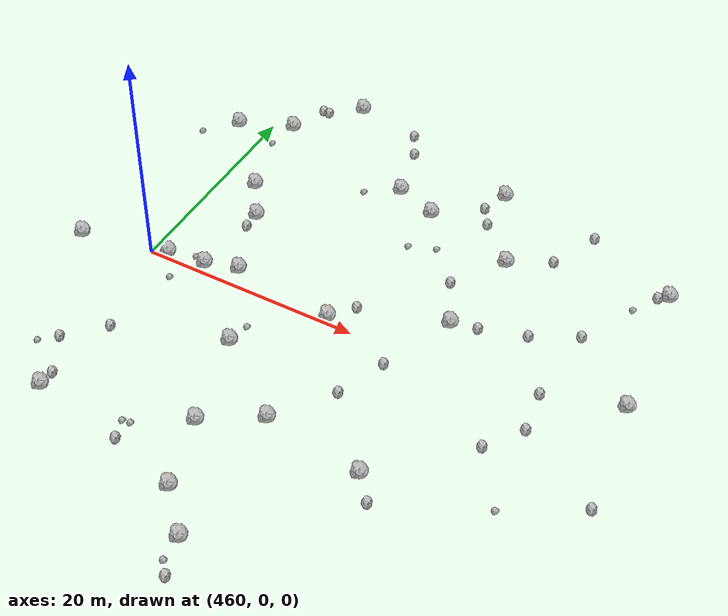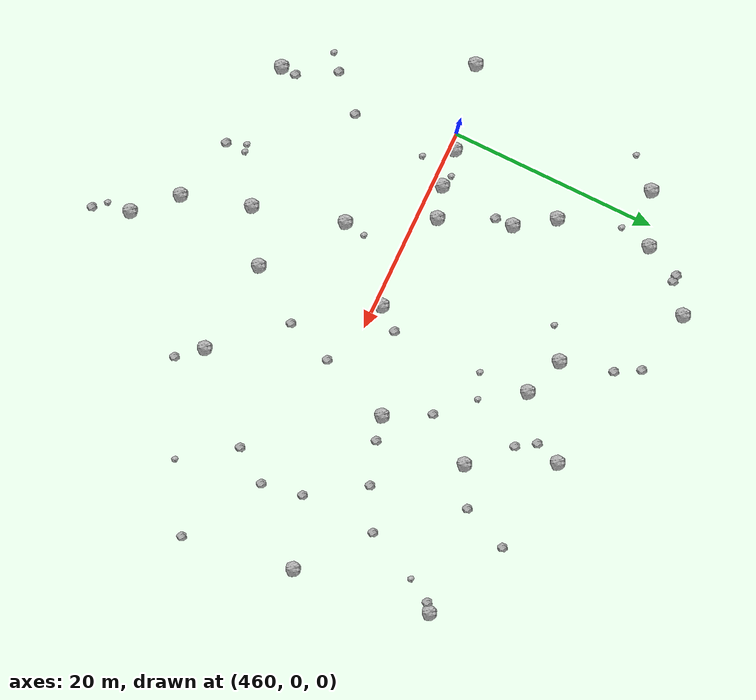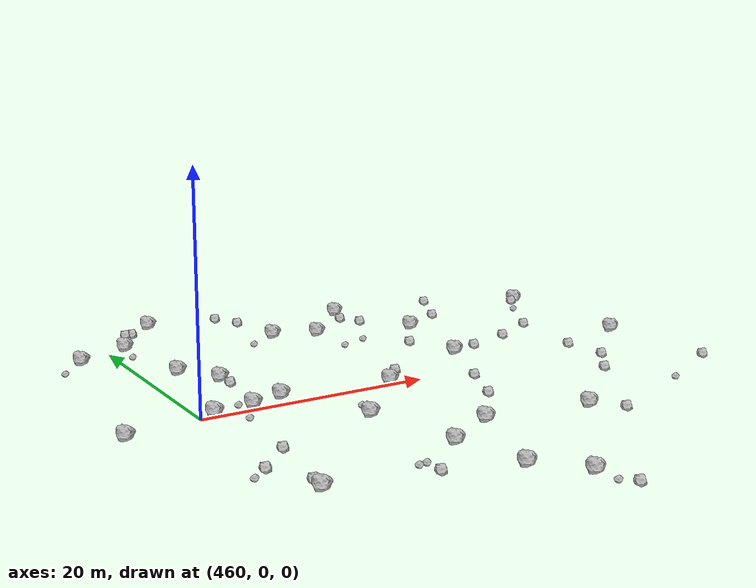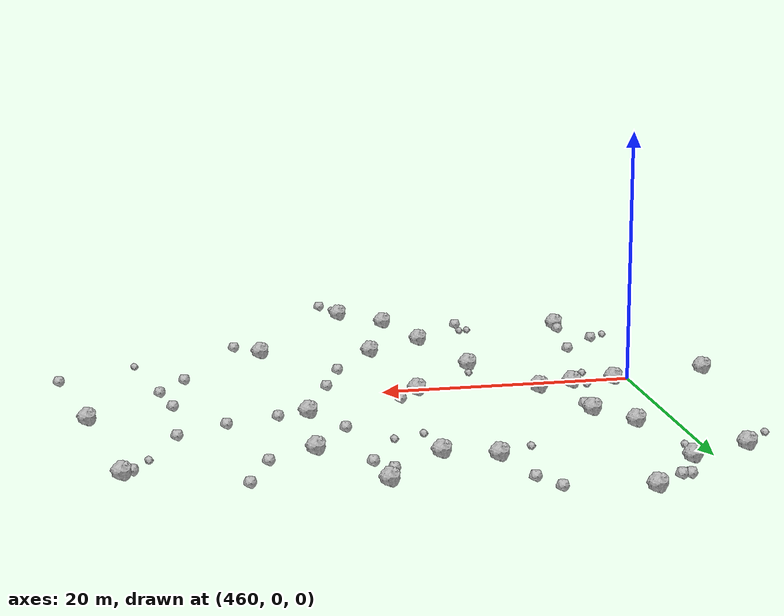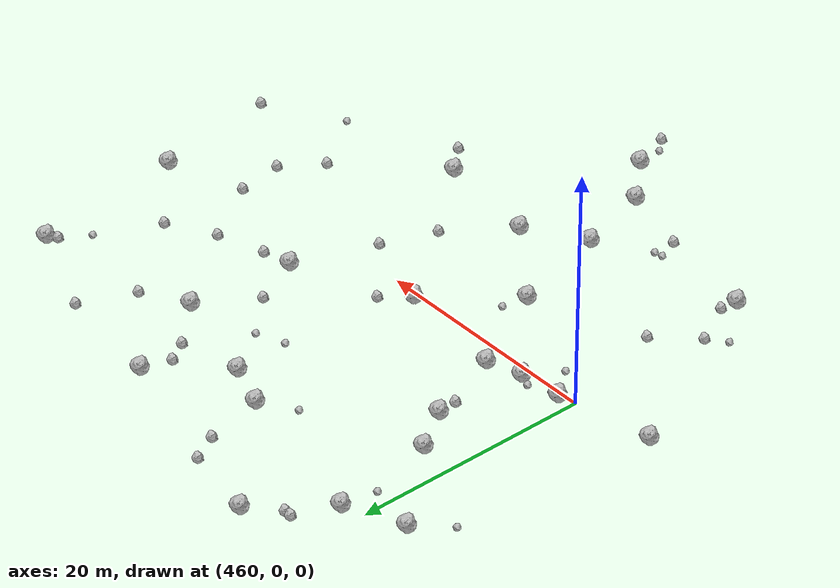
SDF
<sdf version="1.6">
 <world name="default">
  <include><uri>model://sun</uri></include>
  <model name="rock1_12_3">
   <include><uri>model://rock1</uri><pose>478.9979666574049 -11.321955841227894 0.5 0 0 0</pose></include>
  </model>
  <model name="rock1_12_4">
   <include><uri>model://rock1</uri><pose>453.43185582969943 -1.1146230439060645 0.5 0 0 0</pose></include>
  </model>
  <model name="rock1_12_5">
   <include><uri>model://rock1</uri><pose>488.0646466434342 -12.581796171926406 0.5 0 0 0</pose></include>
  </model>
  <model name="rock1_12_6">
   <include><uri>model://rock1</uri><pose>471.8839684683597 -5.788768649592676 0.5 0 0 0</pose></include>
  </model>
  <model name="rock1_12_7">
   <include><uri>model://rock1</uri><pose>465.49385698080954 8.403208958265942 0.5 0 0 0</pose></include>
  </model>
  <model name="rock1_12_8">
   <include><uri>model://rock1</uri><pose>475.0511181758279 17.737032083558 0.5 0 0 0</pose></include>
  </model>
  <model name="rock1_12_9">
   <include><uri>model://rock1</uri><pose>474.2610069267966 -14.296044044997501 0.5 0 0 0</pose></include>
  </model>
  <model name="rock1_12_10">
   <include><uri>model://rock1</uri><pose>466.2734669664699 26.28355561217613 0.5 0 0 0</pose></include>
  </model>
  <model name="rock1_12_11">
   <include><uri>model://rock1</uri><pose>477.4364613899486 0.6109753626851031 0.5 0 0 0</pose></include>
  </model>
  <model name="rock1_12_12">
   <include><uri>model://rock1</uri><pose>463.15539710802244 11.874513165677548 0.5 0 0 0</pose></include>
  </model>
  <model name="rock1_12_13">
   <include><uri>model://rock1</uri><pose>478.8876127807842 16.302103549103514 0.5 0 0 0</pose></include>
  </model>
  <model name="rock1_12_14">
   <include><uri>model://rock1</uri><pose>461.82449692430055 20.6991288338509 0.5 0 0 0</pose></include>
  </model>
  <model name="rock1_12_15">
   <include><uri>model://rock1</uri><pose>467.88305459633835 1.7839058208097782 0.5 0 0 0</pose></include>
  </model>
  <model name="rock1_12_16">
   <include><uri>model://rock1</uri><pose>464.9671408394477 0.8990096378290815 0.5 0 0 0</pose></include>
  </model>
  <model name="rock1_12_17">
   <include><uri>model://rock1</uri><pose>486.68624769932137 4.989639565514459 0.5 0 0 0</pose></include>
  </model>
  <model name="rock1_12_18">
   <include><uri>model://rock1</uri><pose>461.3884391600293 -17.329431269185648 0.5 0 0 0</pose></include>
  </model>
  <model name="rock1_12_19">
   <include><uri>model://rock1</uri><pose>479.52980673115354 -24.29888190498705 0.5 0 0 0</pose></include>
  </model>
  <model name="rock1_12_20">
   <include><uri>model://rock1</uri><pose>483.64812353643777 21.623138563469915 0.5 0 0 0</pose></include>
  </model>
  <model name="rock1_12_21">
   <include><uri>model://rock1</uri><pose>476.15834916299127 -20.724738317171184 0.5 0 0 0</pose></include>
  </model>
  <model name="rock1_12_22">
   <include><uri>model://rock1</uri><pose>487.48990807806524 13.855440470583588 0.5 0 0 0</pose></include>
  </model>
  <model name="rock1_12_23">
   <include><uri>model://rock1</uri><pose>501.36576430724807 16.82425750042414 0.5 0 0 0</pose></include>
  </model>
  <model name="rock1_12_24">
   <include><uri>model://rock1</uri><pose>461.428586962855 0.5224267040594626 0.5 0 0 0</pose></include>
  </model>
  <model name="rock1_12_25">
   <include><uri>model://rock1</uri><pose>503.1052875918725 3.645157968670688 0.5 0 0 0</pose></include>
  </model>
  <model name="rock1_12_26">
   <include><uri>model://rock1</uri><pose>457.06007690111466 18.665494868852036 0.5 0 0 0</pose></include>
  </model>
  <model name="rock2_12_0">
   <include><uri>model://rock2</uri><pose>483.95962775328866 17.41644945815721 0.3 0 0 0</pose></include>
  </model>
  <model name="rock2_12_1">
   <include><uri>model://rock2</uri><pose>504.7926168260862 -7.015774057708185 0.3 0 0 0</pose></include>
  </model>
  <model name="rock2_12_2">
   <include><uri>model://rock2</uri><pose>473.73874244079866 22.764127102554014 0.3 0 0 0</pose></include>
  </model>
  <model name="rock2_12_3">
   <include><uri>model://rock2</uri><pose>492.9571455244656 20.399760591087265 0.3 0 0 0</pose></include>
  </model>
  <model name="rock2_12_4">
   <include><uri>model://rock2</uri><pose>472.487454586982 25.05266212670535 0.3 0 0 0</pose></include>
  </model>
  <model name="rock2_12_5">
   <include><uri>model://rock2</uri><pose>500.56018065586665 16.249587667022226 0.3 0 0 0</pose></include>
  </model>
  <model name="rock2_12_6">
   <include><uri>model://rock2</uri><pose>461.4523716397918 -15.846483331426661 0.3 0 0 0</pose></include>
  </model>
  <model name="rock2_12_7">
   <include><uri>model://rock2</uri><pose>479.086630843042 2.705387569076578 0.3 0 0 0</pose></include>
  </model>
  <model name="rock2_12_8">
   <include><uri>model://rock2</uri><pose>484.519920730858 9.250704758282573 0.3 0 0 0</pose></include>
  </model>
  <model name="rock2_12_9">
   <include><uri>model://rock2</uri><pose>489.0124584801028 5.528368187918964 0.3 0 0 0</pose></include>
  </model>
  <model name="rock2_12_10">
   <include><uri>model://rock2</uri><pose>491.0928259273965 15.90241147977747 0.3 0 0 0</pose></include>
  </model>
  <model name="rock2_12_11">
   <include><uri>model://rock2</uri><pose>489.9859108768402 -14.774149468811919 0.3 0 0 0</pose></include>
  </model>
  <model name="rock2_12_12">
   <include><uri>model://rock2</uri><pose>484.16739207208684 -1.8089442728239078 0.3 0 0 0</pose></include>
  </model>
  <model name="rock2_12_13">
   <include><uri>model://rock2</uri><pose>469.9411436980223 -18.947723561443972 0.3 0 0 0</pose></include>
  </model>
  <model name="rock2_12_14">
   <include><uri>model://rock2</uri><pose>465.57324047338875 6.713728413899965 0.3 0 0 0</pose></include>
  </model>
  <model name="rock2_12_15">
   <include><uri>model://rock2</uri><pose>462.39988587963296 -9.24670994653301 0.3 0 0 0</pose></include>
  </model>
  <model name="rock2_12_16">
   <include><uri>model://rock2</uri><pose>463.7831346847367 24.13796534455856 0.3 0 0 0</pose></include>
  </model>
  <model name="rock2_12_17">
   <include><uri>model://rock2</uri><pose>480.6784812229129 -27.67865435544929 0.3 0 0 0</pose></include>
  </model>
  <model name="rock2_12_18">
   <include><uri>model://rock2</uri><pose>494.9900968504047 -5.644082986706071 0.3 0 0 0</pose></include>
  </model>
  <model name="rock2_12_19">
   <include><uri>model://rock2</uri><pose>482.5373269238688 -6.308602175666696 0.3 0 0 0</pose></include>
  </model>
  <model name="rock2_12_20">
   <include><uri>model://rock2</uri><pose>459.48407341318756 -12.303219473598887 0.3 0 0 0</pose></include>
  </model>
  <model name="rock2_12_21">
   <include><uri>model://rock2</uri><pose>463.1480266222652 24.165692663710523 0.3 0 0 0</pose></include>
  </model>
  <model name="rock2_12_22">
   <include><uri>model://rock2</uri><pose>493.0117759598421 6.79189058996095 0.3 0 0 0</pose></include>
  </model>
  <model name="rock2_12_23">
   <include><uri>model://rock2</uri><pose>482.82409762449555 19.1973584076829 0.3 0 0 0</pose></include>
  </model>
  <model name="rock2_12_24">
   <include><uri>model://rock2</uri><pose>497.1903372742253 -2.427720524551109 0.3 0 0 0</pose></include>
  </model>
  <model name="rock2_12_25">
   <include><uri>model://rock2</uri><pose>496.52494536013995 1.5071265904593822 0.3 0 0 0</pose></include>
  </model>
  <model name="rock2_12_26">
   <include><uri>model://rock2</uri><pose>496.85742716863984 8.91404424349276 0.3 0 0 0</pose></include>
  </model>
  <model name="rock3_12_0">
   <include><uri>model://rock3</uri><pose>499.23294706083374 13.916897517862466 0.2 0 0 0</pose></include>
  </model>
  <model name="rock3_12_1">
   <include><uri>model://rock3</uri><pose>481.4766102523351 12.386796431319326 0.2 0 0 0</pose></include>
  </model>
  <model name="rock3_12_2">
   <include><uri>model://rock3</uri><pose>498.57209021344073 -10.697739023531899 0.2 0 0 0</pose></include>
  </model>
  <model name="rock3_12_3">
   <include><uri>model://rock3</uri><pose>469.24905203259124 -17.185173875717602 0.2 0 0 0</pose></include>
  </model>
  <model name="rock3_12_4">
   <include><uri>model://rock3</uri><pose>461.3145630414396 17.650778409891025 0.2 0 0 0</pose></include>
  </model>
  <model name="rock3_12_5">
   <include><uri>model://rock3</uri><pose>469.95001980482755 -17.06951346206064 0.2 0 0 0</pose></include>
  </model>
  <model name="rock3_12_6">
   <include><uri>model://rock3</uri><pose>463.7819822215517 1.2741183978463013 0.2 0 0 0</pose></include>
  </model>
  <model name="rock3_12_7">
   <include><uri>model://rock3</uri><pose>479.1216306818117 11.500900862782146 0.2 0 0 0</pose></include>
  </model>
  <model name="rock3_12_8">
   <include><uri>model://rock3</uri><pose>463.22917815115727 -1.968638582098741 0.2 0 0 0</pose></include>
  </model>
  <model name="rock3_12_9">
   <include><uri>model://rock3</uri><pose>479.6817794457276 -26.58138650299621 0.2 0 0 0</pose></include>
  </model>
  <model name="rock3_12_10">
   <include><uri>model://rock3</uri><pose>454.63226438854974 15.99515768245174 0.2 0 0 0</pose></include>
  </model>
  <model name="rock3_12_11">
   <include><uri>model://rock3</uri><pose>472.21700076970563 -3.7259240596213097 0.2 0 0 0</pose></include>
  </model>
  <model name="rock3_12_12">
   <include><uri>model://rock3</uri><pose>472.1979013720598 15.875851814317855 0.2 0 0 0</pose></include>
  </model>
  <model name="rock3_12_13">
   <include><uri>model://rock3</uri><pose>458.0532414276519 -13.530297645968673 0.2 0 0 0</pose></include>
  </model>
 </world>
</sdf>
